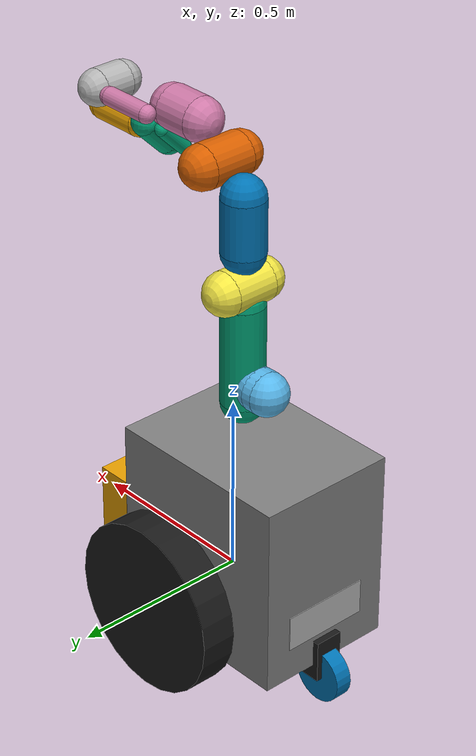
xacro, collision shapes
<?xml version="1.0" encoding="utf-8"?>
<robot xmlns:xacro="http://www.ros.org/wiki/xacro" name="panda_carter">
  <xacro:include filename="$(find carter)/urdf/carter_franka.urdf.xacro" />
  <xacro:include filename="$(find franka_description)/robots/panda_arm.xacro"/>
  <xacro:include filename="$(find franka_description)/robots/hand.xacro"/>

  <xacro:carter_robot />
  <xacro:panda_arm connected_to="chassis_link" xyz="-.035 0 0.525"/>
  <xacro:hand ns="panda" rpy="0 0 ${-pi/4}" connected_to="panda_link8"/>
</robot>

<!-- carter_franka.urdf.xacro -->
<robot xmlns:xacro="http://www.ros.org/wiki/xacro" name="carter">
   <xacro:macro name="carter_robot">
      <material name="black">
         <color rgba=".1 .1 .1 1"/>
      </material>
      <material name="gray">
         <color rgba=".5 .5 .5 1"/>
      </material>
      <link name="chassis_link">
         <visual>
            <origin rpy="0 0 0" xyz="0 0 0" />
            <geometry>
               <mesh filename="package://carter/meshes/chassis_franka.obj" />
            </geometry>
            <material name="gray"/>
         </visual>
         <collision>
            <origin rpy="0 0 0" xyz="-0.07764248 -0.000000 0.14683718" />
            <geometry>
               <box size=".55 .40 .54"/>
            </geometry>
         </collision>
         <inertial>
            <origin rpy="0 0 0" xyz="0.000000 0.000000 0.000000" />
            <mass value="45.88" />
            <inertia ixx="1.182744" ixy="0.017957" ixz="-0.077476" iyx="0.017957" iyy="0.538664" iyz="0.000018" izx="-0.077476" izy="0.000018" izz="1.240229"/>
         </inertial>
      </link>
      <link name="left_wheel_link">
         <visual>
            <origin rpy="1.57057 -1.57057 0" xyz="0 0 0" />
            <geometry>
               <mesh filename="package://carter/meshes/side_wheel.obj" />
            </geometry>
            <material name="black"/>
         </visual>
         <collision>
            <origin rpy="1.57057 -1.57057 0" xyz="0 -0.05 0" />
            <geometry>
               <cylinder radius = "0.240" length = "0.1"/>
            </geometry>
         </collision>
         <inertial>
            <origin rpy="0 0 0" xyz="0.000000 0.000000 0.000000" />
            <mass value="4.195729" />
            <inertia ixx="0.063680" ixy="0.000000" ixz="0.000000" iyx="0.000000" iyy="0.121410" iyz="0.000000" izx="0.000000" izy="0.000000" izz="0.063680"/>
         </inertial>
      </link>
      <link name="right_wheel_link">
         <visual>
            <origin rpy="-1.57057 -1.57057 0" xyz="0 0 0" />
            <geometry>
               <mesh filename="package://carter/meshes/side_wheel.obj" />
            </geometry>
            <material name="black"/>
         </visual>
         <collision>
            <origin rpy="-1.57057 -1.57057 0" xyz="0 .05 0" />
            <geometry>
               <cylinder radius = "0.240" length = "0.1"/>
            </geometry>
         </collision>
         <inertial>
            <origin rpy="0 0 0" xyz="0.000000 0.000000 0.000000" />
            <mass value="4.195729" />
            <inertia ixx="0.063680" ixy="0.000000" ixz="0.000000" iyx="0.000000" iyy="0.121410" iyz="0.000000" izx="0.000000" izy="0.000000" izz="0.063680"/>
         </inertial>
      </link>
      <link name="rear_pivot_link">
         <visual>
            <origin rpy="-1.57057 0 0" xyz="-.03809695 0 -.088" />
            <geometry>
               <mesh filename="package://carter/meshes/pivot.obj" />
            </geometry>
            <material name="black"/>
         </visual>
         <collision>
            <origin rpy="0 0 0" xyz="-.01 0 -.03" />
            <geometry>
               <box size=".09 .08 .12"/>
            </geometry>
         </collision>
         <inertial>
            <origin rpy="0 0 0" xyz="0.000000 0.000000 0.000000" />
            <mass value="0.579519"/>
            <inertia ixx="0.001361" ixy="-0.000003" ixz="0.000347" iyx="-0.000003" iyy="0.001287" iyz="-0.000010" izx="0.000347" izy="-0.000010" izz="0.000632"/>
         </inertial>
      </link>
      <link name="rear_wheel_link">
         <visual>
            <origin rpy="1.57057 0 0" xyz="0 0 0" />
            <geometry>
               <mesh filename="package://carter/meshes/caster_wheel.obj" />
            </geometry>
         </visual>
         <collision>
            <origin rpy="1.57057 0 0" xyz="0 0 0" />
            <geometry>
               <cylinder radius=".076" length=".048" />
            </geometry>
         </collision>
         <inertial>
            <origin rpy="0 0 0" xyz="0.000000 0.000000 0.000000" />
            <mass value="1.25"/>
            <inertia ixx="0.001442" ixy="0.000000" ixz="0.000000" iyx="0.000000" iyy="0.002493" iyz="0.000000" izx="0.000000" izy="0.000000" izz="0.001442"/>
         </inertial>
      </link>
      <link name="front_pivot_link">
         <visual>
            <origin rpy="-1.57057 0 0" xyz="-.03809695 0 -.088" />
            <geometry>
               <mesh filename="package://carter/meshes/pivot.obj" />
            </geometry>
            <material name="black"/>
         </visual>
         <collision>
            <origin rpy="0 0 0" xyz="-.01 0 -.03" />
            <geometry>
               <box size=".09 .08 .12"/>
            </geometry>
         </collision>
         <inertial>
            <origin rpy="0 0 0" xyz="0.000000 0.000000 0.000000" />
            <mass value="0.579519"/>
            <inertia ixx="0.001361" ixy="-0.000003" ixz="0.000347" iyx="-0.000003" iyy="0.001287" iyz="-0.000010" izx="0.000347" izy="-0.000010" izz="0.000632"/>
         </inertial>
      </link>
      <link name="front_wheel_link">
         <visual>
            <origin rpy="1.57057 0 0" xyz="0 0 0" />
            <geometry>
               <mesh filename="package://carter/meshes/caster_wheel.obj" />
            </geometry>
         </visual>
         <collision>
            <origin rpy="1.57057 0 0" xyz="0 0 0" />
            <geometry>
               <cylinder radius=".076" length=".048" />
            </geometry>
         </collision>
         <inertial>
            <origin rpy="0 0 0" xyz="0.000000 0.000000 0.000000" />
            <mass value="1.25"/>
            <inertia ixx="0.001442" ixy="0.000000" ixz="0.000000" iyx="0.000000" iyy="0.002493" iyz="0.000000" izx="0.000000" izy="0.000000" izz="0.001442"/>
         </inertial>
      </link>
      <link name="com_offset">
         <visual>
            <origin rpy="0 0 0" xyz="-.23 0 .02" />
            <geometry>
               <box size="0.01 0.01 0.01"/>
            </geometry>
         </visual>
         <collision>
            <origin rpy="0 0 0" xyz="-.23 0 .02" />
            <geometry>
               <box size=".25 .25 .1"/>
            </geometry>
         </collision>
         <inertial>
            <origin rpy="0 0 0" xyz="0.000000 0.000000 0.000000" />
            <mass value="20.0" />
            <inertia ixx="1.208" ixy="0" ixz="0" iyy="1.208" iyz="0" izz="2.08" />
         </inertial>
      </link>
      <joint name="com_link" type="fixed">
         <origin rpy="0 0 0" xyz="0 0 0" />
         <axis xyz="0 1 0" />
         <parent link="chassis_link" />
         <child link="com_offset" />
      </joint>
      <link name="batteries_link">
         <visual>
            <origin rpy="0 0 0" xyz="0 0 0"/>
            <geometry>
               <box size=".01 .02 .02"/>
            </geometry>
            <material name="dark"/>
         </visual>
         <collision>
            <origin rpy="0 0 0" xyz="0 0 0"/>
            <geometry>
               <box size=".1 .3 .2"/>
            </geometry>
         </collision>
         <inertial>
            <origin rpy="0 0 0" xyz="0.000000 0.000000 0.000000"/>
            <mass value="20"/>
            <inertia ixx="0.216" ixy="0" ixz="0" iyx="0" iyy=".083" iyz="0" izx="0" izy="0" izz=".167"/>
         </inertial>
      </link>
      <joint name="batteries_joint" type="fixed">
         <origin xyz="0.31 0 0.09"/>
         <parent link="chassis_link"/>
         <child link="batteries_link"/>
      </joint>
      <joint name="left_wheel" type="continuous">
         <origin rpy="0 0 0" xyz="0 0.31420517 0" />
         <axis xyz="0 1 0" />
         <parent link="chassis_link" />
         <child link="left_wheel_link" />
      </joint>
      <joint name="right_wheel" type="continuous">
         <origin rpy="0 0 0" xyz="0 -0.31420517 0" />
         <axis xyz="0 1 0" />
         <parent link="chassis_link" />
         <child link="right_wheel_link" />
      </joint>
      <joint name="rear_pivot" type="continuous">
         <origin rpy="0 0 0" xyz="-0.31613607 0 -.0758" />
         <axis xyz="0 0 1" />
         <parent link="chassis_link" />
         <child link="rear_pivot_link" />
      </joint>
      <joint name="rear_axle" type="continuous">
         <origin rpy="0 0 0" xyz="-.03809695 0 -.088" />
         <axis xyz="0 1 0" />
         <parent link="rear_pivot_link" />
         <child link="rear_wheel_link" />
      </joint>
      <joint name="front_pivot" type="continuous">
         <origin rpy="0 0 0" xyz="0.31613607 0 -.0758" />
         <axis xyz="0 0 1" />
         <parent link="chassis_link" />
         <child link="front_pivot_link" />
      </joint>
      <joint name="front_axle" type="continuous">
         <origin rpy="0 0 0" xyz="-.03809695 0 -.088" />
         <axis xyz="0 1 0" />
         <parent link="front_pivot_link" />
         <child link="front_wheel_link" />
      </joint>
   </xacro:macro>
</robot>

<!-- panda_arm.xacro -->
<robot xmlns:xacro="http://www.ros.org/wiki/xacro" name="panda">
  <!-- safety_distance: Minimum safety distance in [m] by which the collision volumes are expanded and which is enforced during robot motions -->
  <!-- arm_id: Namespace of the panda arm. Serves to differentiate between arms in case of multiple instances. -->
  <xacro:macro name="panda_arm" params="arm_id:='panda' description_pkg:='franka_description' connected_to:='' xyz:='0 0 0' rpy:='0 0 0' safety_distance:=0">
    <xacro:unless value="${not connected_to}">
      <joint name="${arm_id}_joint_${connected_to}" type="fixed">
        <parent link="${connected_to}"/>
        <child link="${arm_id}_link0"/>
        <origin rpy="${rpy}" xyz="${xyz}"/>
      </joint>
    </xacro:unless>
    <link name="${arm_id}_link0">
      <visual>
        <geometry>
          <mesh filename="package://${description_pkg}/meshes/visual/link0.dae"/>
        </geometry>
      </visual>
      <collision>
        <origin xyz="-0.075 0 0.06" rpy="0 ${pi/2} 0"/>
        <geometry>
          <cylinder radius="${0.06+safety_distance}" length="0.03" />
        </geometry>
      </collision>
      <collision>
        <origin xyz="-0.06 0 0.06" rpy="0 0 0"/>
        <geometry>
          <sphere radius="${0.06+safety_distance}" />
        </geometry>
      </collision>
      <collision>
        <origin xyz="-0.09 0 0.06" rpy="0 0 0"/>
        <geometry>
          <sphere radius="${0.06+safety_distance}" />
        </geometry>
      </collision>
    </link>
    <link name="${arm_id}_link1">
      <visual>
        <geometry>
          <mesh filename="package://${description_pkg}/meshes/visual/link1.dae"/>
        </geometry>
      </visual>
      <collision>
        <origin xyz="0 0 -0.1915" rpy="0 0 0"/>
        <geometry>
          <cylinder radius="${0.06+safety_distance}" length="0.2830" />
        </geometry>
      </collision>
      <collision>
        <origin xyz="0 0 -0.333" rpy="0 0 0"/>
        <geometry>
          <sphere radius="${0.06+safety_distance}" />
        </geometry>
      </collision>
      <collision>
        <origin xyz="0 0 -0.05" rpy="0 0 0"/>
        <geometry>
          <sphere radius="${0.06+safety_distance}" />
        </geometry>
      </collision>
    </link>
    <joint name="${arm_id}_joint1" type="revolute">
      <safety_controller k_position="100.0" k_velocity="40.0" soft_lower_limit="-2.8973" soft_upper_limit="2.8973"/>
      <origin rpy="0 0 0" xyz="0 0 0.333"/>
      <parent link="${arm_id}_link0"/>
      <child link="${arm_id}_link1"/>
      <axis xyz="0 0 1"/>
      <limit effort="87" lower="-2.8973" upper="2.8973" velocity="2.1750"/>
    </joint>
    <link name="${arm_id}_link2">
      <visual>
        <geometry>
          <mesh filename="package://${description_pkg}/meshes/visual/link2.dae"/>
        </geometry>
      </visual>
      <collision>
        <origin xyz="0 0 0" rpy="0 0 0"/>
        <geometry>
          <cylinder radius="${0.06+safety_distance}" length="0.12" />
        </geometry>
      </collision>
      <collision>
        <origin xyz="0 0 -0.06" rpy="0 0 0"/>
        <geometry>
          <sphere radius="${0.06+safety_distance}" />
        </geometry>
      </collision>
      <collision>
        <origin xyz="0 0 0.06" rpy="0 0 0"/>
        <geometry>
          <sphere radius="${0.06+safety_distance}" />
        </geometry>
      </collision>
    </link>
    <joint name="${arm_id}_joint2" type="revolute">
      <safety_controller k_position="100.0" k_velocity="40.0" soft_lower_limit="-1.7628" soft_upper_limit="1.7628"/>
      <origin rpy="${-pi/2} 0 0" xyz="0 0 0"/>
      <parent link="${arm_id}_link1"/>
      <child link="${arm_id}_link2"/>
      <axis xyz="0 0 1"/>
      <limit effort="87" lower="-1.7628" upper="1.7628" velocity="2.1750"/>
    </joint>
    <link name="${arm_id}_link3">
      <visual>
        <geometry>
          <mesh filename="package://${description_pkg}/meshes/visual/link3.dae"/>
        </geometry>
      </visual>
      <collision>
        <origin xyz="0 0 -0.145" rpy="0 0 0"/>
        <geometry>
          <cylinder radius="${0.06+safety_distance}" length="0.15" />
        </geometry>
      </collision>
      <collision>
        <origin xyz="0 0 -0.22" rpy="0 0 0"/>
        <geometry>
          <sphere radius="${0.06+safety_distance}" />
        </geometry>
      </collision>
      <collision>
        <origin xyz="0 0 -0.07" rpy="0 0 0"/>
        <geometry>
          <sphere radius="${0.06+safety_distance}" />
        </geometry>
      </collision>
    </link>
    <joint name="${arm_id}_joint3" type="revolute">
      <safety_controller k_position="100.0" k_velocity="40.0" soft_lower_limit="-2.8973" soft_upper_limit="2.8973"/>
      <origin rpy="${pi/2} 0 0" xyz="0 -0.316 0"/>
      <parent link="${arm_id}_link2"/>
      <child link="${arm_id}_link3"/>
      <axis xyz="0 0 1"/>
      <limit effort="87" lower="-2.8973" upper="2.8973" velocity="2.1750"/>
    </joint>
    <link name="${arm_id}_link4">
      <visual>
        <geometry>
          <mesh filename="package://${description_pkg}/meshes/visual/link4.dae"/>
        </geometry>
      </visual>
      <collision>
        <origin xyz="0 0 0" rpy="0 0 0"/>
        <geometry>
          <cylinder radius="${0.06+safety_distance}" length="0.12" />
        </geometry>
      </collision>
      <collision>
        <origin xyz="0 0 0.06" rpy="0 0 0"/>
        <geometry>
          <sphere radius="${0.06+safety_distance}" />
        </geometry>
      </collision>
      <collision>
        <origin xyz="0 0 -0.06" rpy="0 0 0"/>
        <geometry>
          <sphere radius="${0.06+safety_distance}" />
        </geometry>
      </collision>
    </link>
    <joint name="${arm_id}_joint4" type="revolute">
      <safety_controller k_position="100.0" k_velocity="40.0" soft_lower_limit="-3.0718" soft_upper_limit="-0.0698"/>
      <origin rpy="${pi/2} 0 0" xyz="0.0825 0 0"/>
      <parent link="${arm_id}_link3"/>
      <child link="${arm_id}_link4"/>
      <axis xyz="0 0 1"/>
      <limit effort="87" lower="-3.0718" upper="-0.0698" velocity="2.1750"/>
    </joint>
    <link name="${arm_id}_link5">
      <visual>
        <geometry>
          <mesh filename="package://${description_pkg}/meshes/visual/link5.dae"/>
        </geometry>
      </visual>
      <collision>
        <origin xyz="0 0 -0.26" rpy="0 0 0"/>
        <geometry>
          <cylinder radius="${0.06+safety_distance}" length="0.1" />
        </geometry>
      </collision>
      <collision>
        <origin xyz="0 0 -0.31" rpy="0 0 0"/>
        <geometry>
          <sphere radius="${0.06+safety_distance}" />
        </geometry>
      </collision>
      <collision>
        <origin xyz="0 0 -0.21" rpy="0 0 0"/>
        <geometry>
          <sphere radius="${0.06+safety_distance}" />
        </geometry>
      </collision>
      <collision>
        <origin xyz="0 0.08 -0.13" rpy="0 0 0"/>
        <geometry>
          <cylinder radius="${0.025+safety_distance}" length="0.14" />
        </geometry>
      </collision>
      <collision>
        <origin xyz="0 0.08 -0.06" rpy="0 0 0"/>
        <geometry>
          <sphere radius="${0.025+safety_distance}" />
        </geometry>
      </collision>
      <collision>
        <origin xyz="0 0.08 -0.20" rpy="0 0 0"/>
        <geometry>
          <sphere radius="${0.025+safety_distance}" />
        </geometry>
      </collision>

    </link>
    <joint name="${arm_id}_joint5" type="revolute">
      <safety_controller k_position="100.0" k_velocity="40.0" soft_lower_limit="-2.8973" soft_upper_limit="2.8973"/>
      <origin rpy="${-pi/2} 0 0" xyz="-0.0825 0.384 0"/>
      <parent link="${arm_id}_link4"/>
      <child link="${arm_id}_link5"/>
      <axis xyz="0 0 1"/>
      <limit effort="12" lower="-2.8973" upper="2.8973" velocity="2.6100"/>
    </joint>
    <link name="${arm_id}_link6">
      <visual>
        <geometry>
          <mesh filename="package://${description_pkg}/meshes/visual/link6.dae"/>
        </geometry>
      </visual>
      <collision>
        <origin xyz="0 0 -0.03" rpy="0 0 0"/>
        <geometry>
          <cylinder radius="${0.05+safety_distance}" length="0.08" />
        </geometry>
      </collision>
      <collision>
        <origin xyz="0 0 0.01" rpy="0 0 0"/>
        <geometry>
          <sphere radius="${0.05+safety_distance}" />
        </geometry>
      </collision>
      <collision>
        <origin xyz="0 0 -0.07" rpy="0 0 0"/>
        <geometry>
          <sphere radius="${0.05+safety_distance}" />
        </geometry>
      </collision>
    </link>
    <joint name="${arm_id}_joint6" type="revolute">
      <safety_controller k_position="100.0" k_velocity="40.0" soft_lower_limit="-0.0175" soft_upper_limit="3.7525"/>
      <origin rpy="${pi/2} 0 0" xyz="0 0 0"/>
      <parent link="${arm_id}_link5"/>
      <child link="${arm_id}_link6"/>
      <axis xyz="0 0 1"/>
      <limit effort="12" lower="-0.0175" upper="3.7525" velocity="2.6100"/>
    </joint>
    <link name="${arm_id}_link7">
      <visual>
        <geometry>
          <mesh filename="package://${description_pkg}/meshes/visual/link7.dae"/>
        </geometry>
      </visual>
      <collision>
        <origin xyz="0 0 0.01" rpy="0 0 0"/>
        <geometry>
          <cylinder radius="${0.04+safety_distance}" length="0.14" />
        </geometry>
      </collision>
      <collision>
        <origin xyz="0 0 0.08" rpy="0 0 0"/>
        <geometry>
          <sphere radius="${0.04+safety_distance}"  />
        </geometry>
      </collision>
      <collision>
        <origin xyz="0 0 -0.06" rpy="0 0 0"/>
        <geometry>
          <sphere radius="${0.04+safety_distance}"  />
        </geometry>
      </collision>
    </link>
    <joint name="${arm_id}_joint7" type="revolute">
      <safety_controller k_position="100.0" k_velocity="40.0" soft_lower_limit="-2.8973" soft_upper_limit="2.8973"/>
      <origin rpy="${pi/2} 0 0" xyz="0.088 0 0"/>
      <parent link="${arm_id}_link6"/>
      <child link="${arm_id}_link7"/>
      <axis xyz="0 0 1"/>
      <limit effort="12" lower="-2.8973" upper="2.8973" velocity="2.6100"/>
    </joint>
    <link name="${arm_id}_link8">
      <collision>
        <origin xyz="0.0424 0.0424 -0.0250" rpy="${pi} ${pi/2} ${pi/2}"/>
        <geometry>
          <cylinder radius="${0.03+safety_distance}"  length="0.01" />
        </geometry>
      </collision>
      <collision>
        <origin xyz="0.0424 0.0424 -0.02" rpy="0 0 0"/>
        <geometry>
          <sphere radius="${0.03+safety_distance}"  />
        </geometry>
      </collision>
      <collision>
        <origin xyz="0.0424 0.0424 -0.03" rpy="0 0 0"/>
        <geometry>
          <sphere radius="${0.03+safety_distance}"  />
        </geometry>
      </collision>
    </link>
    <joint name="${arm_id}_joint8" type="fixed">
      <origin rpy="0 0 0" xyz="0 0 0.107"/>
      <parent link="${arm_id}_link7"/>
      <child link="${arm_id}_link8"/>
    </joint>
  </xacro:macro>
</robot>

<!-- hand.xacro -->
<robot xmlns:xacro="http://www.ros.org/wiki/xacro" name="hand">
  <!-- safety_distance: Minimum safety distance in [m] by which the collision volumes are expanded and which is enforced during robot motions -->
  <xacro:macro name="hand" params="connected_to:='' ns:='' rpy:='0 0 0' xyz:='0 0 0' safety_distance:=0">
    <xacro:unless value="${connected_to == ''}">
      <joint name="${ns}_hand_joint" type="fixed">
        <parent link="${connected_to}"/>
        <child link="${ns}_hand"/>
        <origin xyz="${xyz}" rpy="${rpy}"/>
      </joint>
    </xacro:unless>
    <link name="${ns}_hand">
      <visual>
        <geometry>
          <mesh filename="package://franka_description/meshes/visual/hand.dae"/>
        </geometry>
      </visual>
      <collision>
        <origin xyz="0 0 0.04" rpy="0 ${pi/2} ${pi/2}"/>
        <geometry>
          <cylinder radius="${0.04+safety_distance}" length="0.1" />
        </geometry>
      </collision>
      <collision>
        <origin xyz="0 -0.05 0.04" rpy="0 0 0"/>
        <geometry>
          <sphere radius="${0.04+safety_distance}"  />
        </geometry>
      </collision>
      <collision>
        <origin xyz="0 0.05 0.04" rpy="0 0 0"/>
        <geometry>
          <sphere radius="${0.04+safety_distance}"  />
        </geometry>
      </collision>
      <collision>
        <origin xyz="0 0 0.1" rpy="0 ${pi/2} ${pi/2}"/>
        <geometry>
          <cylinder radius="${0.02+safety_distance}" length="0.1" />
        </geometry>
      </collision>
      <collision>
        <origin xyz="0 -0.05 0.1" rpy="0 0 0"/>
        <geometry>
          <sphere radius="${0.02+safety_distance}"  />
        </geometry>
      </collision>
      <collision>
        <origin xyz="0 0.05 0.1" rpy="0 0 0"/>
        <geometry>
          <sphere radius="${0.02+safety_distance}"  />
        </geometry>
      </collision>
    </link>
    <link name="${ns}_leftfinger">
      <visual>
        <geometry>
          <mesh filename="package://franka_description/meshes/visual/finger.dae"/>
        </geometry>
      </visual>
    </link>
    <link name="${ns}_rightfinger">
      <visual>
        <geometry>
          <mesh filename="package://franka_description/meshes/visual/finger.dae"/>
        </geometry>
      </visual>
   </link>
    <joint name="${ns}_finger_joint1" type="prismatic">
      <parent link="${ns}_hand"/>
      <child link="${ns}_leftfinger"/>
      <origin xyz="0 0 0.0584" rpy="0 0 0"/>
      <axis xyz="0 1 0"/>
      <limit effort="20" lower="0.0" upper="0.04" velocity="0.2"/>
    </joint>
    <joint name="${ns}_finger_joint2" type="prismatic">
      <parent link="${ns}_hand"/>
      <child link="${ns}_rightfinger"/>
      <origin xyz="0 0 0.0584" rpy="0 0 0"/>
      <axis xyz="0 -1 0"/>
      <limit effort="20" lower="0.0" upper="0.04" velocity="0.2"/>
      <mimic joint="${ns}_finger_joint1" />
    </joint>
  </xacro:macro>
</robot>
